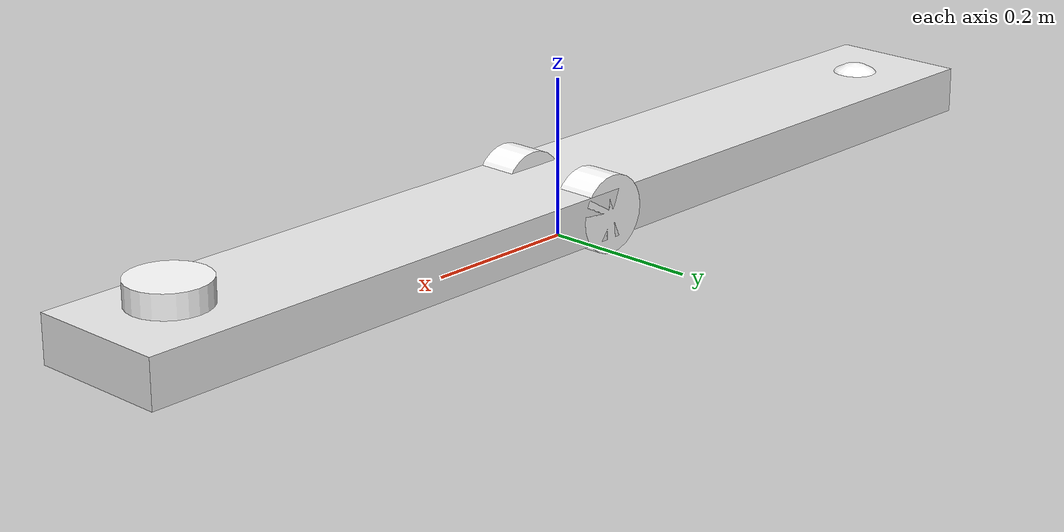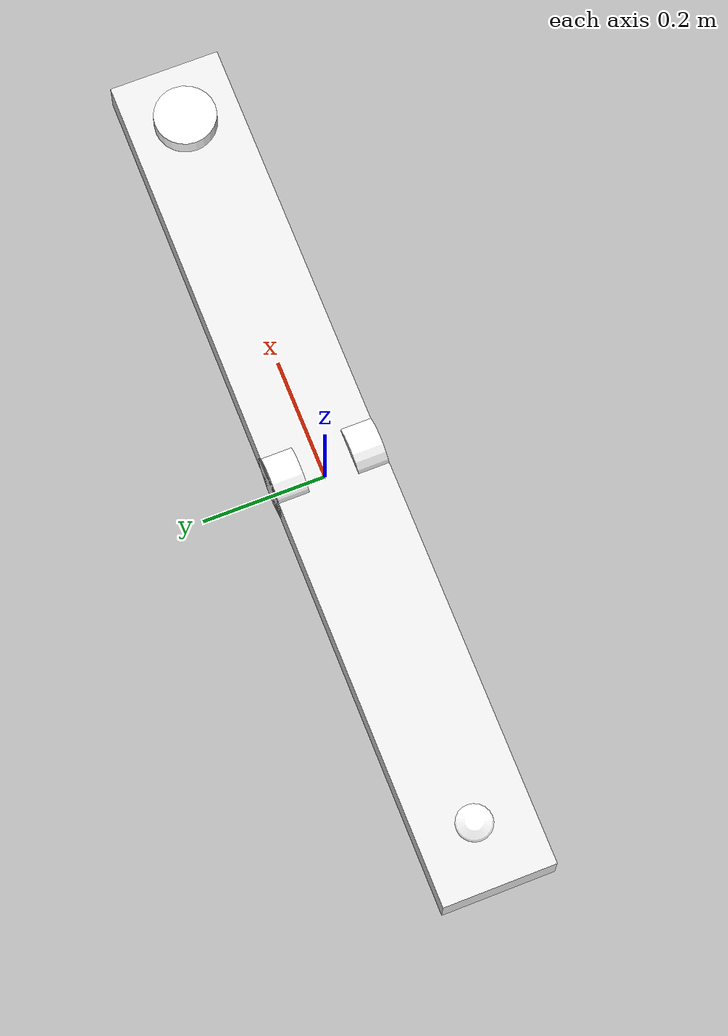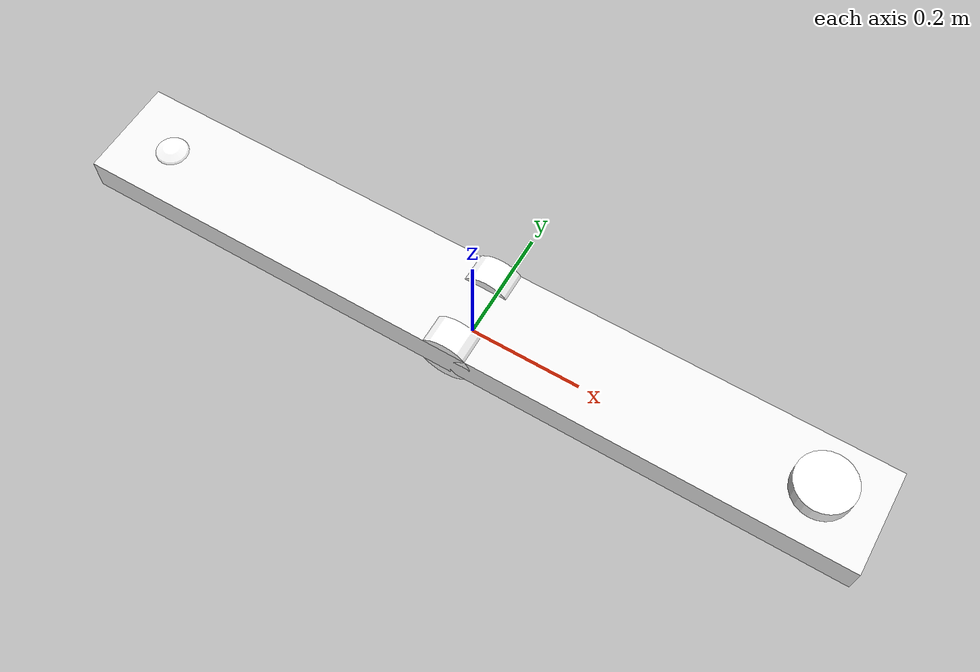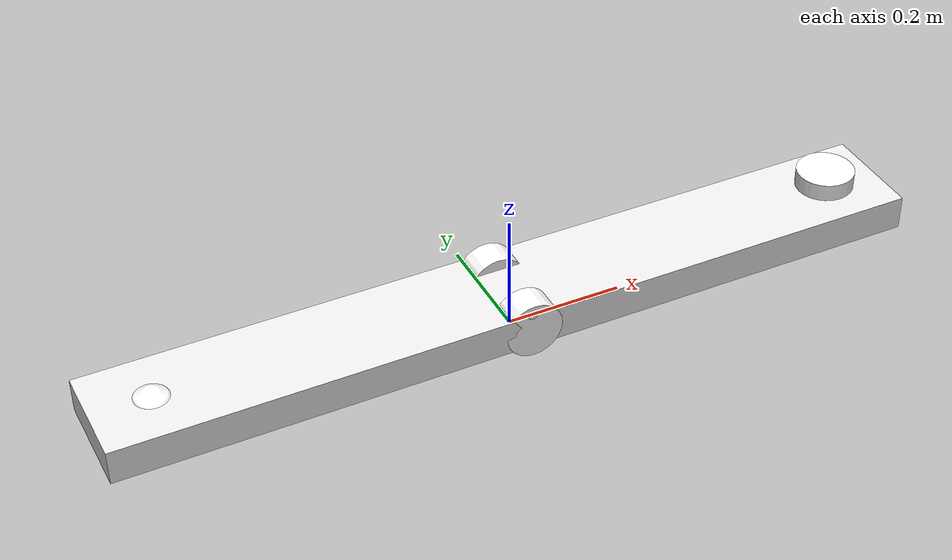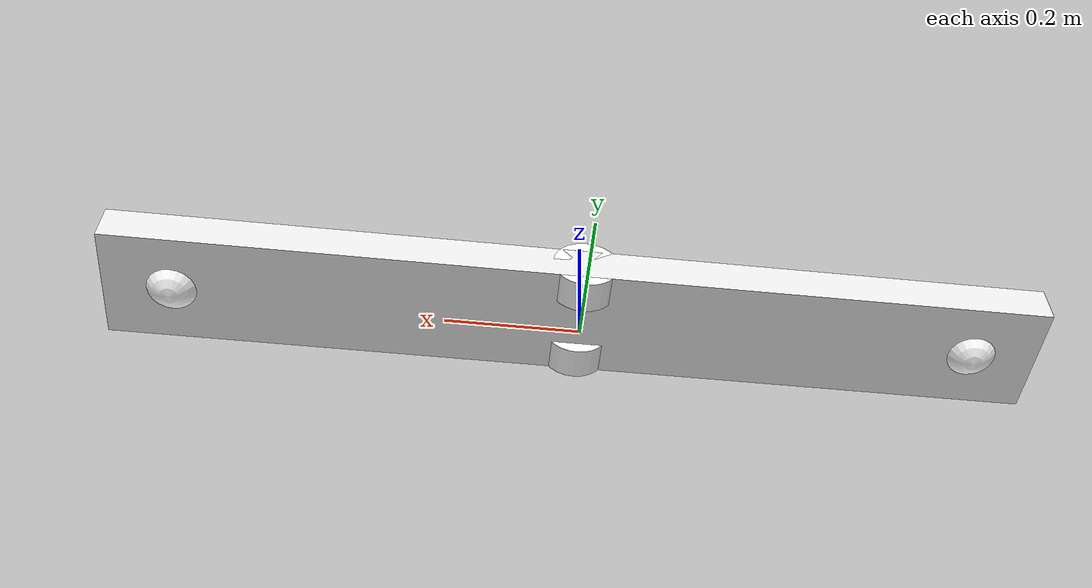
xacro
<?xml version="1.0"?>
<robot xmlns:xacro="http://ros.org/wiki/xacro" name="$(arg tf_prefix)twinfork_robot">

    <xacro:arg name="tf_prefix" default="" />
    <xacro:arg name="param_file" default="" />
    <xacro:arg name="robot_color" default="Gazebo/White"/>

    <xacro:property name="base_color" value="$(arg robot_color)" />
    <!-- prefix can not start with a slash like a global namespace! results in TF errors -->
    <xacro:property name="ns" value="$(arg tf_prefix)" />
    <xacro:property name="prefix" value="${ns}/" />

    <!-- include configs and macros -->
    <xacro:include filename="$(find twinfork_description)/urdf/mech/wheels.xacro" />
    <xacro:include filename="$(find twinfork_description)/urdf/mech/twinfork.transmission.xacro" />
    <xacro:include filename="$(find twinfork_description)/urdf/common_properties.urdf.xacro" />
    <xacro:include filename="$(find twinfork_description)/urdf/controllers/diffdrive_gazebo.xacro" />
    <xacro:include filename="$(find twinfork_description)/urdf/sensors/laserscan.xacro" />
    <xacro:include filename="$(find twinfork_description)/urdf/sensors/imu.xacro" />

    <!-- base footprint -->
    <link name="${prefix}base_footprint" />
    <joint name="${prefix}base_to_link" type="fixed">
        <parent link="${prefix}base_footprint" />
        <child link="${prefix}base_link" />
        <origin xyz="0 0 ${wheel_radius + wheel_zoff}" rpy="0 0 0" />
    </joint>

    <!-- base link -->
    <link name="${prefix}base_link">
        <visual>
            <geometry>
                <box size="${base_length} ${base_width} ${base_height}" />
            </geometry>
        </visual>
        <collision>
            <geometry>
                <box size="${base_length} ${base_width} ${base_height}" />
            </geometry>
        </collision>
        <xacro:box_inertial mass="5.0" x="${base_length}" y="${base_width}" z="${base_height}">
            <origin xyz="0 0 0" rpy="0 0 0" />
        </xacro:box_inertial>
    </link>
    <gazebo reference="${prefix}base_link">
        <material>${base_color}</material>
    </gazebo>

    <!-- wheels and casters -->
    <xacro:drive_wheel prefix="${prefix}drivewhl_l" x_off="-${wheel_xoff}" y_off="${wheel_ygap}" base_prefix="${prefix}"/>
    <xacro:drive_wheel prefix="${prefix}drivewhl_r" x_off="${wheel_xoff}" y_off="-${wheel_ygap}" base_prefix="${prefix}"/>
    <xacro:caster_wheel prefix="${prefix}front_caster" x_off="${caster_xoff}" base_prefix="${prefix}"/>
    <xacro:caster_wheel prefix="${prefix}back_caster" x_off="-${caster_xoff}" base_prefix="${prefix}"/>

    <!-- *********************** LIDAR SETUP **********************************  -->
    <!-- Front laser –– ยิงไปข้างหน้า -->
    <xacro:laser_sensor
        name="${prefix}front_laser"
        namespace="${ns}"
        parent="${prefix}base_link"
        xyz="0.60 0 0.05"
        rpy="0 0 ${(pi/4) - 0.2618}"
        min_angle="-2.356"
        max_angle="2.356"
        topic="front_scan" />

    <!-- Back laser –– ยิงกลับหลัง (หมุน 180°) -->
    <xacro:laser_sensor
        name="${prefix}back_laser"
        namespace="${ns}"
        parent="${prefix}base_link"
        xyz="-0.60 0 0.0"
        rpy="0 0 ${pi + pi/4 - 0.2618}"
        min_angle="-2.356"
        max_angle="2.356"
        topic="back_scan" />

    <!-- *********************** IMU SETUP *********************************  -->
    <joint name="${prefix}imu_joint" type="fixed">
        <parent link="${prefix}base_link" />
        <child link="${prefix}imu_link" />
        <origin xyz="0 0 0.05" rpy="0 0 0" />
    </joint>

    <link name="${prefix}imu_link" />

    <xacro:imu_gazebo link="${prefix}imu_link" namespace="${ns}" update_rate="50.0" stdev="${imu_stdev}" />

    <link name="${prefix}lifter_link">
        <visual>
            <origin xyz="0 0 0" rpy="0 0 0" />
            <geometry>
                <box size="${base_length-0.01} ${base_width-0.01} ${base_height-0.01}" />
            </geometry>
            <material name="Blue">
                <color rgba="0.1 0.1 0.9 1.0" />
            </material>
        </visual>
        <collision>
            <origin xyz="0 0 0" rpy="0 0 0" />
            <geometry>
                <box size="${base_length-0.01} ${base_width-0.01} ${base_height-0.01}" />
            </geometry>
        </collision>
        <xacro:box_inertial mass="5.0" x="${base_length-0.01}" y="${base_width-0.01}"
            z="${base_height-0.01}">
            <origin xyz="0 0 0" rpy="0 0 0" />
        </xacro:box_inertial>
    </link>

    <joint name="${prefix}lifter" type="prismatic">
        <parent link="${prefix}base_link" />
        <child link="${prefix}lifter_link" />
        <!-- origin ตั้งตำแหน่งเริ่มต้น -->
        <origin xyz="0 0 0" rpy="0 0 0" />
        <!-- แกน Z บน base_link -->
        <axis xyz="0 0.9 1" />
        <limit lower="0.0" upper="0.05" effort="100000" velocity="100.0" />
    </joint>

    <ros2_control name="GazeboSystem" type="system">
        <hardware>
            <plugin>gazebo_ros2_control/GazeboSystem</plugin>
        </hardware>
        <joint name="${prefix}lifter">
            <command_interface name="effort">
                <param name="min">-1000</param>
                <param name="max">1000</param>
            </command_interface>
            <state_interface name="position" />
            <state_interface name="velocity" />
            <state_interface name="effort" />
        </joint>
    </ros2_control>

    <gazebo>
        <plugin filename="libgazebo_ros2_control.so" name="gazebo_ros2_control">
            <ros>
                <namespace>${ns}</namespace>
            </ros>
            <parameters>/home/chayanin09/twinfork_ws/src/twinfork_description/config/Ai_Khieow_lifter_controller.yaml</parameters>
        </plugin>
    </gazebo>

    <!-- lifter, transmissions, ros2_control unchanged -->
    <xacro:twinfork_wheel_transmissions />

    <xacro:diff_controller_plugin_gazebo
        prefix="${prefix}" ns="${ns}"
        left_wheel_joint="${prefix}drivewhl_l_wheel_joint"
        right_wheel_joint="${prefix}drivewhl_r_wheel_joint"
        wheel_separation="${2*wheel_ygap}"
        wheel_radius="${wheel_radius}"
    />
</robot>

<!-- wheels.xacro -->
<robot xmlns:xacro="http://ros.org/wiki/xacro">
    <xacro:include filename="$(find twinfork_description)/urdf/common_properties.urdf.xacro" />

    <xacro:macro name="drive_wheel" params="prefix x_off y_off base_prefix">
        <link name="${prefix}_wheel_link">
            <visual>
                <origin xyz="0 0 0" rpy="${pi/2} 0 0" />
                <geometry>
                    <cylinder radius="${wheel_radius}" length="${wheel_width}" />
                </geometry>
                <xacro:insert_block name="material_white" />
            </visual>
            <collision>
                <origin xyz="0 0 0" rpy="${pi/2} 0 0" />
                <geometry>
                    <cylinder radius="${wheel_radius}" length="${wheel_width}" />
                </geometry>
            </collision>
            <xacro:cylinder_inertial mass="1.0" radius="${wheel_radius}" length="${wheel_width}">
                <origin xyz="0 0 0" rpy="${pi/2} 0 0" />
            </xacro:cylinder_inertial>
        </link>
        <joint name="${prefix}_wheel_joint" type="continuous">
            <parent link="${base_prefix}base_link" />
            <child link="${prefix}_wheel_link" />
            <origin xyz="${x_off} ${y_off} ${-wheel_zoff}" rpy="0 0 0" />
            <axis xyz="0 1 0" />
        </joint>
        <gazebo reference="${prefix}_wheel_link">
            <mu1>10.0</mu1>
            <mu2>10.0</mu2>
            <material>Gazebo/Black</material>
        </gazebo>
    </xacro:macro>

    <xacro:macro name="caster_wheel" params="prefix x_off base_prefix color='Gazebo/Black'">
        <link name="${prefix}_caster_link">
            <visual>
                <geometry>
                    <sphere radius="${caster_radius}" />
                </geometry>
                <xacro:insert_block name="material_white" />
            </visual>
            <collision>
                <geometry>
                    <sphere radius="${caster_radius}" />
                </geometry>
            </collision>
            <xacro:sphere_inertial mass="0.1" radius="${caster_radius}">
                <origin xyz="0 0 0" rpy="0 0 0" />
            </xacro:sphere_inertial>
        </link>
        <joint name="${prefix}_caster_joint" type="fixed">
            <parent link="${base_prefix}base_link" />
            <child link="${prefix}_caster_link" />
            <origin xyz="${x_off} 0 ${-(wheel_radius+wheel_zoff-caster_radius-0.0001)}" rpy="0 0 0" />
        </joint>
        <gazebo reference="${prefix}_caster_link">
            <mu1>0.0</mu1>
            <mu2>0.0</mu2>
            <material>${color}</material>
        </gazebo>
    </xacro:macro>
</robot>

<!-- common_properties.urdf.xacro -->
<!--
  Various useful properties such as constants and materials
 -->
<robot name="xacro_properties" xmlns:xacro="http://ros.org/wiki/xacro">
  <!-- #################### Robot materials #################### -->
  <xacro:property name="base_length" value="1.4" />
  <xacro:property name="base_width"  value="0.18" />
  <xacro:property name="base_height" value="0.06" />
  <xacro:property name="wheel_radius" value="0.049" />
  <xacro:property name="wheel_width"  value="0.05" />
  <xacro:property name="wheel_ygap" value="0.065" />
  <xacro:property name="wheel_zoff" value="0.0" />
  <xacro:property name="wheel_xoff" value="0.0" />
  <xacro:property name="caster_xoff" value="0.6" />
  <xacro:property name="caster_radius" value="0.045" />
  <xacro:property name="imu_stdev" value="0.00017" />
  <!-- #################### RViz materials #################### -->
  <xacro:property name="material_white">
    <material name="white">
      <color rgba="1 1 1 1"/>
    </material>
  </xacro:property>
  <xacro:property name="material_yellow">
    <material name="yellow">
      <color rgba="${255/255} ${226/255} ${0/255} 1"/>
    </material>
  </xacro:property>
  <xacro:property name="material_almost_white">
    <material name="almost_white">
      <color rgba="0.9 0.9 0.9 1" />
    </material>
  </xacro:property>
  <xacro:property name="material_grey">
    <material name="grey">
      <color rgba="0.5 0.5 0.5 1"/>
    </material>
  </xacro:property>
  <xacro:property name="material_light_grey">
    <material name="light_grey">
      <color rgba="0.6 0.6 0.6 1"/>
    </material>
  </xacro:property>
  <xacro:property name="material_dark_grey">
    <material name="dark_grey">
      <color rgba="0.3 0.3 0.3 1"/>
    </material>
  </xacro:property>
  <xacro:property name="material_black">
    <material name="black">
      <color rgba="0.1 0.1 0.1 1"/>
    </material>
  </xacro:property>
  <xacro:property name="material_aluminum">
    <material name="aluminum">
      <color rgba="0.8 0.8 0.8 1" />
    </material>
  </xacro:property>
  <xacro:property name="material_silver">
    <material name="silver">
      <color rgba="0.79 0.82 0.93 1" />
    </material>
  </xacro:property>
  <xacro:property name="material_red">
    <material name="red">
      <color rgba="1 0 0 1" />
    </material>
  </xacro:property>

  <!-- #################### inertials with origin #################### -->
  <!-- see https://secure.wikimedia.org/wikipedia/en/wiki/List_of_moment_of_inertia_tensors -->
  <xacro:macro name="sphere_inertial" params="radius mass *origin">
    <inertial>
      <mass value="${mass}" />
      <xacro:insert_block name="origin" />
      <inertia ixx="${0.4 * mass * radius * radius}" ixy="0.0" ixz="0.0"
        iyy="${0.4 * mass * radius * radius}" iyz="0.0"
        izz="${0.4 * mass * radius * radius}" />
    </inertial>
  </xacro:macro>

  <xacro:macro name="cylinder_inertial" params="radius length mass *origin">
    <inertial>
      <mass value="${mass}" />
      <xacro:insert_block name="origin" />
      <inertia ixx="${0.0833333 * mass * (3 * radius * radius + length * length)}" ixy="0.0" ixz="0.0"
        iyy="${0.0833333 * mass * (3 * radius * radius + length * length)}" iyz="0.0"
        izz="${0.5 * mass * radius * radius}" />
    </inertial>
  </xacro:macro>

  <xacro:macro name="box_inertial" params="x y z mass *origin">
    <inertial>
      <mass value="${mass}" />
      <xacro:insert_block name="origin" />
      <inertia ixx="${0.0833333 * mass * (y*y + z*z)}" ixy="0.0" ixz="0.0"
        iyy="${0.0833333 * mass * (x*x + z*z)}" iyz="0.0"
        izz="${0.0833333 * mass * (x*x + y*y)}" />
    </inertial>
  </xacro:macro>
</robot>

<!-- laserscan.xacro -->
<robot xmlns:xacro="http://ros.org/wiki/xacro">

  <xacro:include filename="$(find twinfork_description)/urdf/common_properties.urdf.xacro" />

  <!-- ===== Macro: laser_sensor ===== -->
  <xacro:macro name="laser_sensor"
    params="
      name
      parent
      xyz:='0 0 0'
      rpy:='0 0 0'
      radius:='0.05'
      length:='0.03'
      mass:='0.20'
      samples:='600'
      min_angle:='-1.57'
      max_angle:='1.57'
      min_range:='0.5'
      max_range:='20.0'
      update_rate:='10'
      topic:='scan'
      namespace:=''">

    <!-- Joint -->
    <joint name="${name}_joint" type="fixed">
      <parent link="${parent}" />
      <child link="${name}_link" />
      <origin xyz="${xyz}" rpy="${rpy}" />
    </joint>

    <!-- Link -->
    <link name="${name}_link">
      <visual>
        <geometry>
          <cylinder radius="${radius}" length="${length}" />
        </geometry>
        <material name="White">
          <color rgba="1 1 1 1" />
        </material>
      </visual>
      <collision>
        <geometry>
          <cylinder radius="${radius}" length="${length}" />
        </geometry>
      </collision>
      <xacro:cylinder_inertial mass="1.0" radius="${radius}" length="${length}">
        <origin xyz="0 0 0" rpy="0 0 0"/>
      </xacro:cylinder_inertial>
    </link>

    <!-- Gazebo sensor -->
    <gazebo reference="${name}_link">
      <sensor name="${name}_ray" type="ray">
        <update_rate>${update_rate}</update_rate>
        <visualize>true</visualize>
        <ray>
          <scan>
            <horizontal>
              <samples>${samples}</samples>
              <min_angle>${min_angle}</min_angle>
              <max_angle>${max_angle}</max_angle>
            </horizontal>
          </scan>
          <range>
            <min>${min_range}</min>
            <max>${max_range}</max>
          </range>
        </ray>
        <plugin name="${name.replace('/', '_')}_plugin" filename="libgazebo_ros_ray_sensor.so">
          <ros>
            <namespace>${namespace}</namespace>
            <remapping>~/out:=${topic}</remapping>
          </ros>
          <output_type>sensor_msgs/LaserScan</output_type>
          <frame_name>${name}_link</frame_name>
        </plugin>
      </sensor>
    </gazebo>

  </xacro:macro>

</robot>

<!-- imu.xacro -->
<robot xmlns:xacro="http://ros.org/wiki/xacro">
  <!-- If tf_prefix is given, use "frame tf_prefix/imu_frame", else "imu_frame" -->
  <xacro:arg name="tf_prefix" default="" />
  <xacro:property name="tf_prefix" value="$(arg tf_prefix)" />
  <xacro:if value="${tf_prefix == ''}">
      <xacro:property name="imu_frame" value="imu_frame" />
  </xacro:if>
  <xacro:unless value="${tf_prefix == ''}">
      <xacro:property name="imu_frame" value="$(arg tf_prefix)/imu_frame" />
  </xacro:unless>

  <xacro:macro name="imu_gazebo" params="link namespace update_rate stdev">
    <gazebo reference="${link}">
      <gravity>true</gravity>
      <sensor name="imu_sensor" type="imu">
        <always_on>true</always_on>
        <update_rate>${update_rate}</update_rate>
        <visualize>true</visualize>
        <imu>
          <angular_velocity>
            <x>
              <noise type="gaussian">
                <mean>0.0</mean>
                <stddev>${stdev}</stddev>
                <bias_mean>0.0000075</bias_mean>
                <bias_stddev>0.0000008</bias_stddev>
              </noise>
            </x>
            <y>
              <noise type="gaussian">
                <mean>0.0</mean>
                <stddev>${stdev}</stddev>
                <bias_mean>0.0000075</bias_mean>
                <bias_stddev>0.0000008</bias_stddev>
              </noise>
            </y>
            <z>
              <noise type="gaussian">
                <mean>0.0</mean>
                <stddev>${stdev}</stddev>
                <bias_mean>0.0000075</bias_mean>
                <bias_stddev>0.0000008</bias_stddev>
              </noise>
            </z>
          </angular_velocity>
          <linear_acceleration>
            <x>
              <noise type="gaussian">
                <mean>0.0</mean>
                <stddev>${stdev}</stddev>
                <bias_mean>0.1</bias_mean>
                <bias_stddev>0.001</bias_stddev>
              </noise>
            </x>
            <y>
              <noise type="gaussian">
                <mean>0.0</mean>
                <stddev>${stdev}</stddev>
                <bias_mean>0.1</bias_mean>
                <bias_stddev>0.001</bias_stddev>
              </noise>
            </y>
            <z>
              <noise type="gaussian">
                <mean>0.0</mean>
                <stddev>${stdev}</stddev>
                <bias_mean>0.1</bias_mean>
                <bias_stddev>0.001</bias_stddev>
              </noise>
            </z>
          </linear_acceleration>
        </imu>
        <plugin filename="libgazebo_ros_imu_sensor.so" name="imu_plugin">
        <initial_orientation_as_reference>false</initial_orientation_as_reference>
          <ros>
            <namespace>${namespace}</namespace>
            <remapping>~/out:=/${namespace}/imu_data</remapping>
            <frame_name>${imu_frame}</frame_name>  <!-- from real MiR -->
          </ros>
          <robot_param_node>/${namespace}/robot_state_publisher</robot_param_node>
        </plugin>
      </sensor>
    </gazebo>
  </xacro:macro>
</robot>
